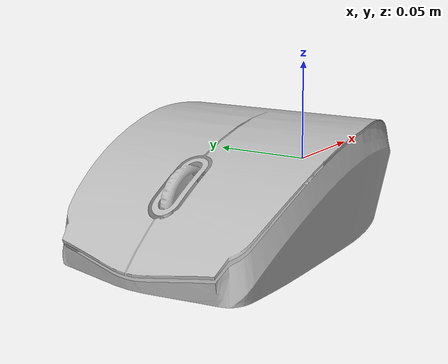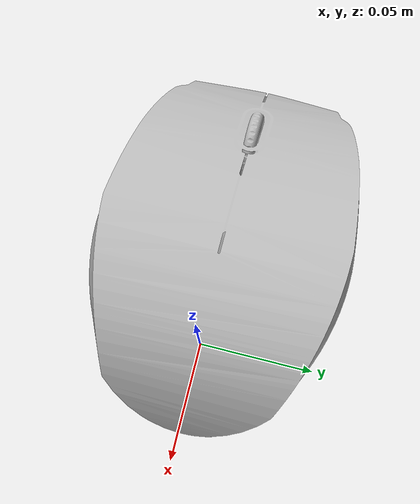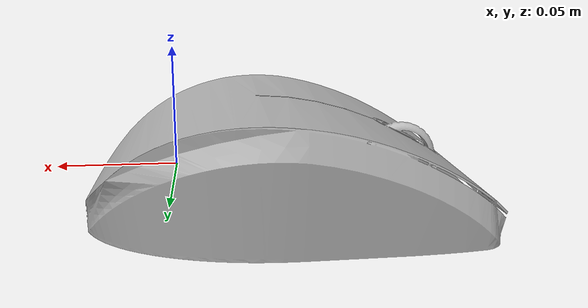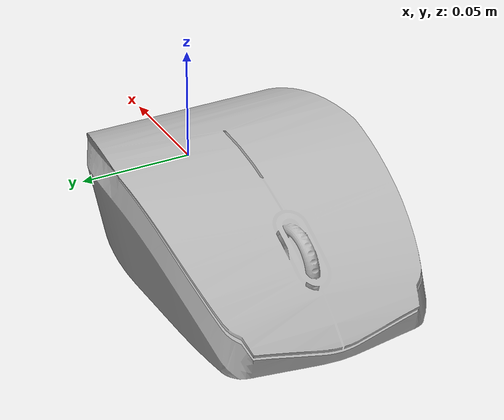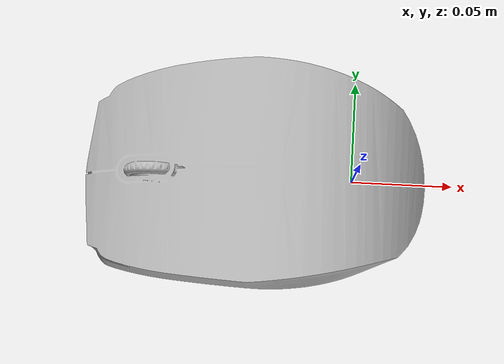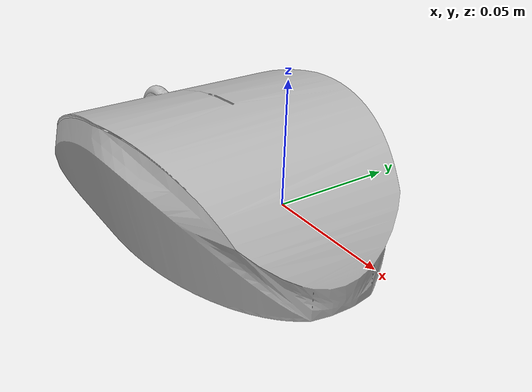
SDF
<sdf version='1.6'>
  <model name='mouse'>
    <link name='mouse'>
      <pose frame=''>0 0 0 0 -0 0</pose>
      <inertial>
        <pose frame=''>-0.098 -0 0 0 -0 0</pose>
        <mass>0.12374</mass>
        <inertia>
          <ixx>1.2934e-07</ixx>
          <ixy>-4.1445e-23</ixy>
          <ixz>2.1033e-22</ixz>
          <iyy>2.5309e-07</iyy>
          <iyz>-2.10773e-23</iyz>
          <izz>1.2934e-07</izz>
        </inertia>
      </inertial>
      <collision name='Mouse_collision'>
      	<surface>
	    <friction>
	      	<ode>
				<mu>0.5</mu>
				<mu2>0.5</mu2>
	      	</ode>
	    </friction>
	    <contact>
	      	<ode>
			<kp>1000000.0</kp>
			<kd>1.0</kd>
			<max_vel>1.0</max_vel>
			<min_depth>0.0025</min_depth>
	      	</ode>
	    </contact>
	  </surface>
        <pose frame=''>0 0 0 1.5708 -0 0</pose>
        <geometry>
          <mesh>
            <scale>1 1 1</scale>
            <uri>model://Mouse/meshes/mouse.STL</uri>
          </mesh>
        </geometry>
      </collision>
      <velocity_decay>
            <linear>0.000000</linear>
            <angular>0.000000</angular>
        </velocity_decay>
        <self_collide>0</self_collide>
        <kinematic>0</kinematic>
        <gravity>1</gravity>
      <visual name='Mouse_visual'>
        <pose frame=''>0 0 0 1.5708 -0 0</pose>
        <geometry>
          <mesh>
            <scale>1 1 1</scale>
            <uri>model://Mouse/meshes/mouse.STL</uri>
          </mesh>
        </geometry>
      </visual>
    </link>
  </model>
</sdf>
